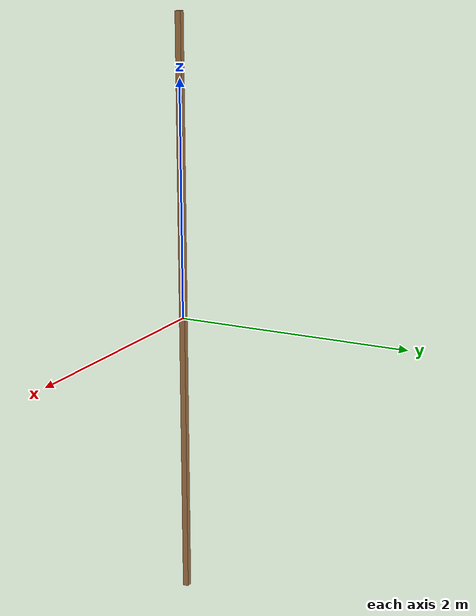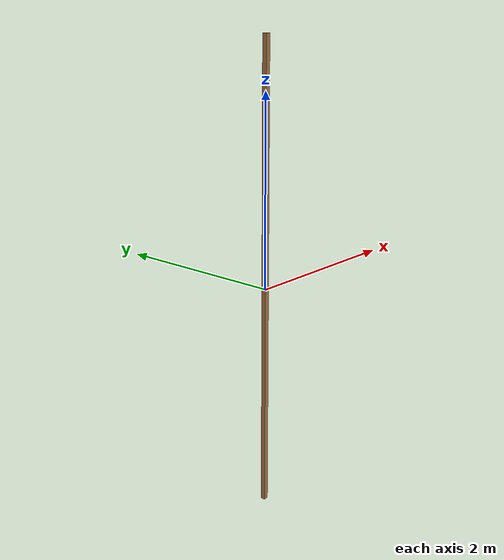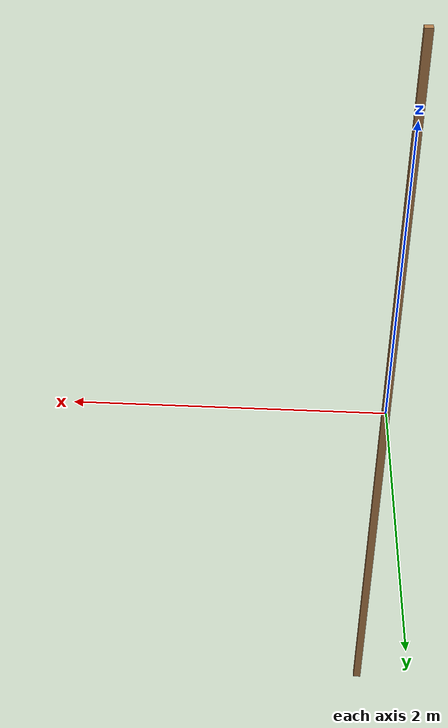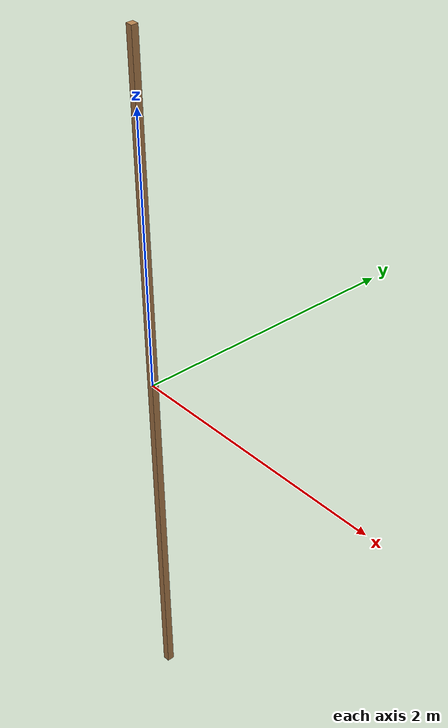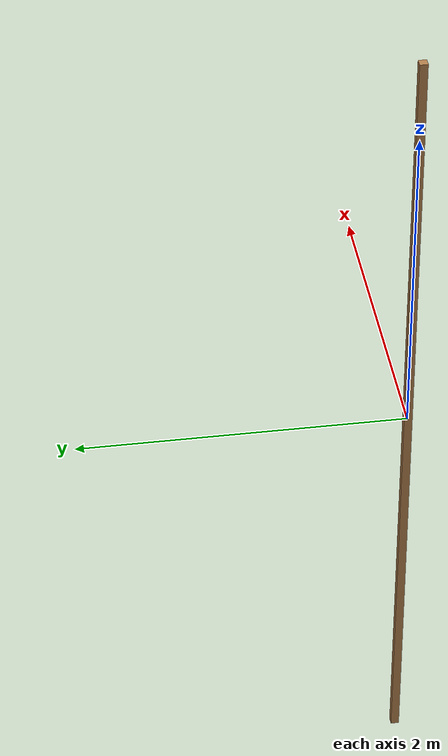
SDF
<?xml version="1.0" ?>
<sdf version="1.5">
  <model name="wood_cube_obstacle">
    <link name="link">
      <pose>0 0 0.025 0 0 0</pose>
      <inertial>
        <mass>1.0</mass>
        <inertia>
          <ixx>2.3541666666666672e-05</ixx>
          <ixy>0</ixy>
          <ixz>0</ixz>
          <iyy>2.3541666666666672e-05</iyy>
          <iyz>0</iyz>
          <izz>2.3541666666666672e-05</izz>
        </inertia>
      </inertial>

      <collision name="collision">
        <geometry>
          <box>
            <size>0.05 0.05 5.0</size>
          </box>
        </geometry>
        <surface>
          <contact>
            <!-- Red Pine coefficients for longitudinal axis of the wood
                 according to:
                 http://www.fpl.fs.fed.us/documnts/fplgtr/fplgtr113/ch04.pdf -->
            <poissons_ratio>0.347</poissons_ratio>
            <elastic_modulus>8.8e+09</elastic_modulus>
            <ode>
              <kp>100000</kp>
              <kd>1</kd>
              <max_vel>1.0</max_vel>
              <min_depth>0.001</min_depth>
            </ode>
          </contact>
          <friction>
            <torsional>
              <coefficient>1.0</coefficient>
              <use_patch_radius>0</use_patch_radius>
              <surface_radius>0.05</surface_radius>
            </torsional>
          </friction>
        </surface>
      </collision>

      <visual name="visual">
        <geometry>
          <box>
            <size>0.05 0.05 5.0</size>
          </box>
        </geometry>
        <material>
          <script>
            <uri>file://media/materials/scripts/gazebo.material</uri>
            <name>Gazebo/Wood</name>
          </script>
        </material>
      </visual>

    </link>
  </model>
</sdf>
